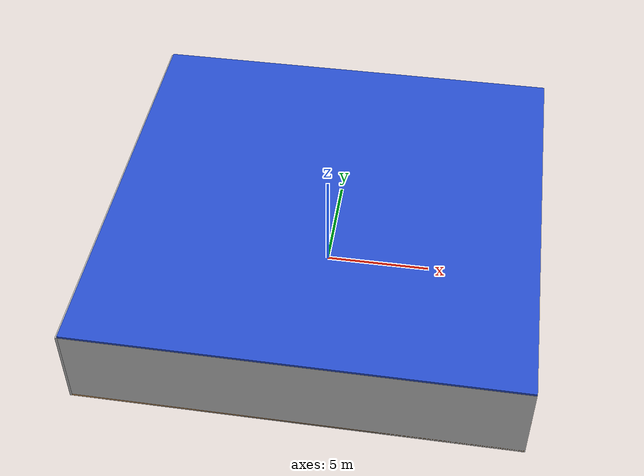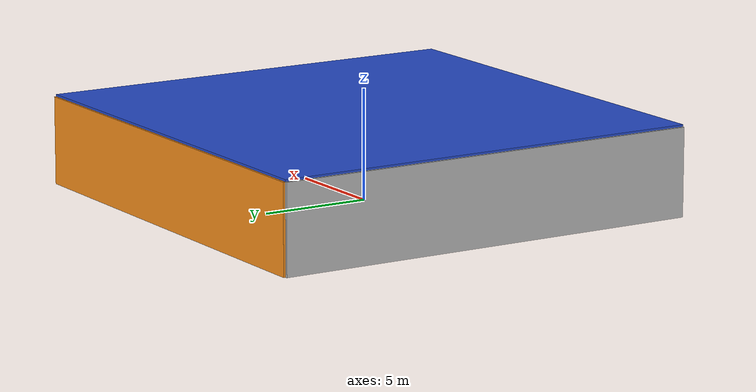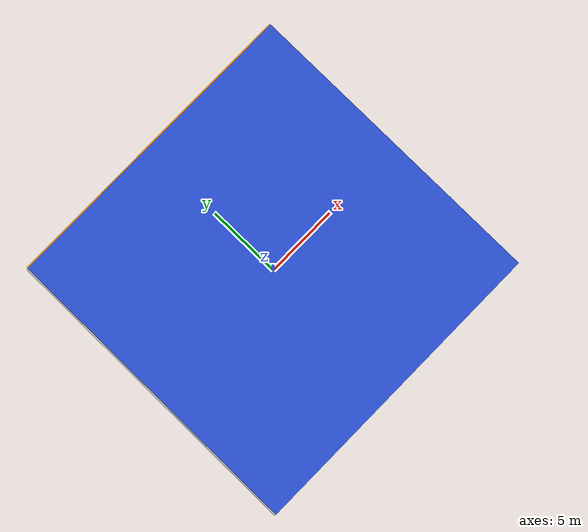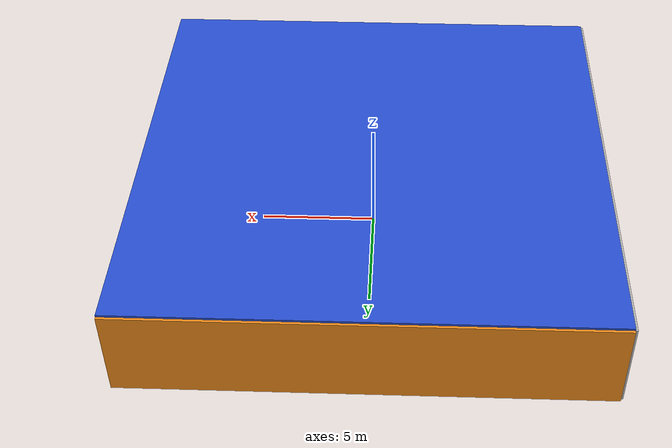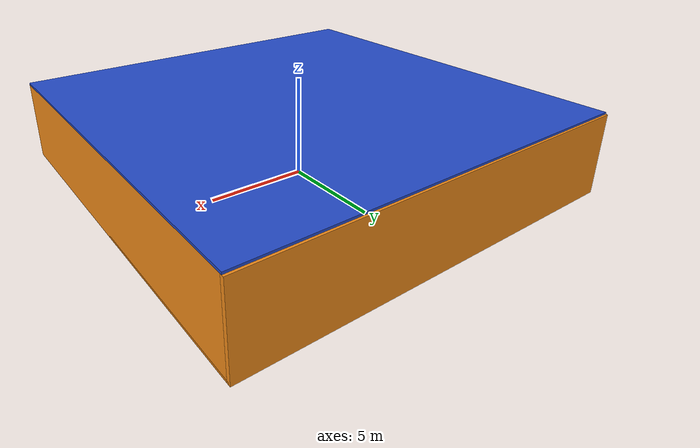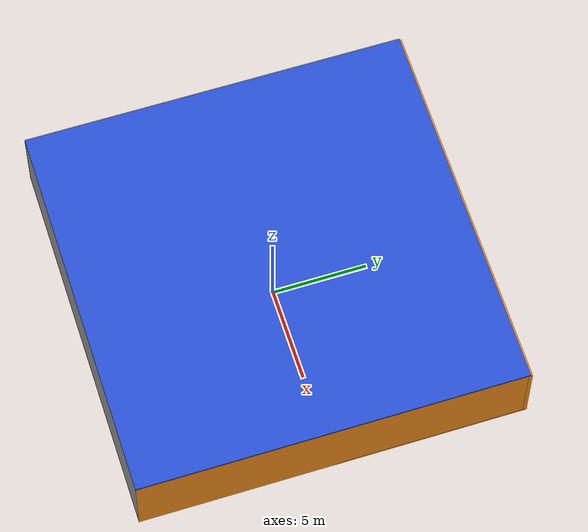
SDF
<sdf version="1.4">
 <world name="default">
  <physics type="ode">
   <max_step_size>0.001</max_step_size>
   <real_time_factor>1</real_time_factor>
   <real_time_update_rate>1000</real_time_update_rate>
   <gravity>0 0 -9.8</gravity>
  </physics>
  <scene><ambient>0.4 0.4 0.4 1</ambient><background>0.7 0.7 0.7 1</background><shadows>1</shadows></scene>
  <model name="Surrounding">
   <static>1</static>
   <link name="Ceiling">
    <collision name="Ceiling_Collision"><geometry><box><size>20 20 0.1</size></box></geometry></collision>
    <visual name="Ceiling_Visual">
     <geometry><box><size>20 20 0.1</size></box></geometry>
     <material>
      <script><uri>file://media/materials/scripts/gazebo.material</uri><name>Gazebo/BlueLaser</name></script>
     </material>
    </visual>
    <pose>0 0 4.05 0 0 0</pose>
   </link>
   <link name="Wall_South">
    <collision name="Wall_South_Collision">
     <geometry><box><size>20 0 4</size></box></geometry>
     <pose>0 0 2 0 -0 0</pose>
    </collision>
    <visual name="Wall_South_Visual">
     <pose>0 0 2 0 -0 0</pose>
     <geometry><box><size>20 0 4</size></box></geometry>
     <material>
      <script><uri>file://media/materials/scripts/gazebo.material</uri><name>Gazebo/LightOn</name></script>
     </material>
    </visual>
    <velocity_decay><linear>0</linear><angular>0</angular></velocity_decay>
    <pose>0 -10 0 0 -0 0</pose>
   </link>
   <link name="Wall_East">
    <collision name="Wall_21_Collision">
     <geometry><box><size>20 0 4</size></box></geometry>
     <pose>0 0 2 0 -0 0</pose>
    </collision>
    <visual name="Wall_21_Visual">
     <pose>0 0 2 0 -0 0</pose>
     <geometry><box><size>20 0 4</size></box></geometry>
     <material>
      <script><uri>file://media/materials/scripts/gazebo.material</uri><name>Gazebo/Orange</name></script>
     </material>
    </visual>
    <velocity_decay><linear>0</linear><angular>0</angular></velocity_decay>
    <pose>10 0 0 0 -0 1.5708</pose>
   </link>
   <link name="Wall_North">
    <collision name="Wall_22_Collision">
     <geometry><box><size>20 0.2 4</size></box></geometry>
     <pose>0 0 2 0 -0 0</pose>
    </collision>
    <visual name="Wall_22_Visual">
     <pose>0 0 2 0 -0 0</pose>
     <geometry><box><size>20 0.2 4</size></box></geometry>
     <material>
      <script><uri>file://media/materials/scripts/gazebo.material</uri><name>Gazebo/Orange</name></script>
     </material>
    </visual>
    <velocity_decay><linear>0</linear><angular>0</angular></velocity_decay>
    <pose>0 10 0 0 -0 0</pose>
   </link>
   <link name="Wall_West">
    <collision name="Wall_23_Collision">
     <geometry><box><size>20 0.2 4</size></box></geometry>
     <pose>0 0 2 0 -0 0</pose>
    </collision>
    <visual name="Wall_23_Visual">
     <pose>0 0 2 0 -0 0</pose>
     <geometry><box><size>20 0.2 4</size></box></geometry>
     <material>
      <script><uri>file://media/materials/scripts/gazebo.material</uri><name>Gazebo/PioneerBody</name></script>
     </material>
    </visual>
    <velocity_decay><linear>0</linear><angular>0</angular></velocity_decay>
    <pose>-10 0 0 0 0 -1.5708</pose>
   </link>
   <link name="Ground_link">
    <collision name="collision">
     <pose>0 0 .05 0 -0 0</pose>
     <geometry><box><size>20 20 0.1</size></box></geometry>
    </collision>
    <visual name="visual">
     <pose>0 0 .05 0 -0 0</pose>
     <geometry><box><size>20 20 0.1</size></box></geometry>
     <material>
      <script>
       <uri>file://media/materials/scripts/gazebo.material</uri>
       <name>Gazebo/OrangeTransparent</name>
      </script>
     </material>
    </visual>
   </link>
   <static>1</static>
  </model>
  <spherical_coordinates>
   <surface_model>EARTH_WGS84</surface_model>
   <latitude_deg>0</latitude_deg>
   <longitude_deg>0</longitude_deg>
   <elevation>0</elevation>
   <heading_deg>0</heading_deg>
  </spherical_coordinates>
  <light name="lightball_0" type="diffuse">
   <diffuse>0.8 0.8 0.8 1</diffuse>
   <specular>0.2 0.2 0.2 1</specular>
   <attenuation>
    <range>100</range>
    <constant>0.7</constant>
    <linear>0.01</linear>
    <quadratic>0.001</quadratic>
   </attenuation>
   <direction>-0.5 0.1 -0.9</direction>
   <pose>1.51476534947 -4.71693900185 1.92029082901 0 0 0</pose>
  </light>
  <light name="lightball_1" type="diffuse">
   <diffuse>0.8 0.8 0.8 1</diffuse>
   <specular>0.2 0.2 0.2 1</specular>
   <attenuation>
    <range>100</range>
    <constant>0.7</constant>
    <linear>0.01</linear>
    <quadratic>0.001</quadratic>
   </attenuation>
   <direction>-0.5 0.1 -0.9</direction>
   <pose>1.61325849337 -8.25745544751 3.52743823235 0 0 0</pose>
  </light>
  <light name="lightball_2" type="diffuse">
   <diffuse>0.8 0.8 0.8 1</diffuse>
   <specular>0.2 0.2 0.2 1</specular>
   <attenuation>
    <range>100</range>
    <constant>0.7</constant>
    <linear>0.01</linear>
    <quadratic>0.001</quadratic>
   </attenuation>
   <direction>-0.5 0.1 -0.9</direction>
   <pose>2.68926341738 -6.36390803155 3.53747687238 0 0 0</pose>
  </light>
  <light name="lightball_3" type="diffuse">
   <diffuse>0.8 0.8 0.8 1</diffuse>
   <specular>0.2 0.2 0.2 1</specular>
   <attenuation>
    <range>100</range>
    <constant>0.7</constant>
    <linear>0.01</linear>
    <quadratic>0.001</quadratic>
   </attenuation>
   <direction>-0.5 0.1 -0.9</direction>
   <pose>-4.38637906402 -4.09905989973 2.5692904162 0 0 0</pose>
  </light>
  <light name="lightball_4" type="diffuse">
   <diffuse>0.8 0.8 0.8 1</diffuse>
   <specular>0.2 0.2 0.2 1</specular>
   <attenuation>
    <range>100</range>
    <constant>0.7</constant>
    <linear>0.01</linear>
    <quadratic>0.001</quadratic>
   </attenuation>
   <direction>-0.5 0.1 -0.9</direction>
   <pose>3.4480293131 -4.78275318141 2.69251980188 0 0 0</pose>
  </light>
  <light name="lightball_5" type="diffuse">
   <diffuse>0.8 0.8 0.8 1</diffuse>
   <specular>0.2 0.2 0.2 1</specular>
   <attenuation>
    <range>100</range>
    <constant>0.7</constant>
    <linear>0.01</linear>
    <quadratic>0.001</quadratic>
   </attenuation>
   <direction>-0.5 0.1 -0.9</direction>
   <pose>-9.4134642956 -3.80053342393 3.4267693429 0 0 0</pose>
  </light>
  <light name="lightball_6" type="diffuse">
   <diffuse>0.8 0.8 0.8 1</diffuse>
   <specular>0.2 0.2 0.2 1</specular>
   <attenuation>
    <range>100</range>
    <constant>0.7</constant>
    <linear>0.01</linear>
    <quadratic>0.001</quadratic>
   </attenuation>
   <direction>-0.5 0.1 -0.9</direction>
   <pose>-7.65268271429 9.85868091942 1.50868916526 0 0 0</pose>
  </light>
  <light name="lightball_7" type="diffuse">
   <diffuse>0.8 0.8 0.8 1</diffuse>
   <specular>0.2 0.2 0.2 1</specular>
   <attenuation>
    <range>100</range>
    <constant>0.7</constant>
    <linear>0.01</linear>
    <quadratic>0.001</quadratic>
   </attenuation>
   <direction>-0.5 0.1 -0.9</direction>
   <pose>-8.78163325445 9.58710599191 0.694949811324 0 0 0</pose>
  </light>
  <light name="lightball_8" type="diffuse">
   <diffuse>0.8 0.8 0.8 1</diffuse>
   <specular>0.2 0.2 0.2 1</specular>
   <attenuation>
    <range>100</range>
    <constant>0.7</constant>
    <linear>0.01</linear>
    <quadratic>0.001</quadratic>
   </attenuation>
   <direction>-0.5 0.1 -0.9</direction>
   <pose>-7.306587865 9.96360164872 2.32011973331 0 0 0</pose>
  </light>
  <light name="lightball_9" type="diffuse">
   <diffuse>0.8 0.8 0.8 1</diffuse>
   <specular>0.2 0.2 0.2 1</specular>
   <attenuation>
    <range>100</range>
    <constant>0.7</constant>
    <linear>0.01</linear>
    <quadratic>0.001</quadratic>
   </attenuation>
   <direction>-0.5 0.1 -0.9</direction>
   <pose>5.41458181289 -0.261804598121 1.58357400508 0 0 0</pose>
  </light>
  <light name="lightball_10" type="diffuse">
   <diffuse>0.8 0.8 0.8 1</diffuse>
   <specular>0.2 0.2 0.2 1</specular>
   <attenuation>
    <range>100</range>
    <constant>0.7</constant>
    <linear>0.01</linear>
    <quadratic>0.001</quadratic>
   </attenuation>
   <direction>-0.5 0.1 -0.9</direction>
   <pose>2.09077186045 -2.84369855568 1.52262803887 0 0 0</pose>
  </light>
  <include>
   <uri>model://construction_cone</uri>
   <pose>-5.06037797773 2.03057421087 0 0 0 0.32836717838</pose>
  </include>
  <include>
   <uri>model://robocup_3Dsim_goal</uri>
   <pose>-0.759084584455 8.11682570784 0 0 0 1.37216567243</pose>
  </include>
  <include>
   <uri>model://textured_shapes</uri>
   <pose>1.88783234918 -1.05393437581 0 0 0 0.485459100519</pose>
  </include>
  <include><uri>model://cabinet</uri><pose>1.5335938589 1.16189864592 0 0 0 1.40121219909</pose></include>
  <include>
   <uri>model://robocup_3Dsim_goal</uri>
   <pose>6.92089190698 -7.62597056625 0 0 0 3.02254524697</pose>
  </include>
  <include>
   <uri>model://construction_cone</uri>
   <pose>7.21863101425 -0.971694587577 0 0 0 2.68372286857</pose>
  </include>
 </world>
</sdf>

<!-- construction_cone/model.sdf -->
<sdf version="1.5">
  <model name="Construction Cone">
    <link name="link">
      <collision name="collision">
        <geometry>
          <mesh>
            <scale>10 10 10</scale>
            <uri>file://isr-testbed/construction_cone/meshes/construction_cone.dae</uri>
          </mesh>
        </geometry>
      </collision>
      <visual name="visual">
        <geometry>
          <mesh>
            <scale>10 10 10</scale>
            <uri>file://isr-testbed/construction_cone/meshes/construction_cone.dae</uri>
          </mesh>
        </geometry>
      </visual>
    </link>
  </model>
</sdf>

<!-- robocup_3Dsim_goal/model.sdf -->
<sdf version="1.5">
  <model name="robocup_3d_goal">
    <static>true</static>
    <link name="left_post">
      <pose>0 1.05 0.45 0 0 0</pose>
      <collision name="collision">
        <geometry>
          <cylinder>
            <radius>0.05</radius>
            <length>0.9</length>
          </cylinder>
        </geometry>
      </collision>
      <visual name="visual">
        <geometry>
          <cylinder>
            <radius>0.05</radius>
            <length>0.9</length>
          </cylinder>
        </geometry>
        <material>
          <script>
            <uri>file://media/materials/scripts/gazebo.material</uri>
            <name>Gazebo/ZincYellow</name>
          </script>
        </material>
      </visual>
    </link>
    <link name="left_support_horiz_lower">
      <pose>0.30 1.05 0.01 0 0 0</pose>
      <collision name="collision">
        <geometry>
          <box>
            <size>0.50 0.02 0.02</size>
          </box>
        </geometry>
      </collision>
      <visual name="visual">
        <geometry>
          <box>
            <size>0.50 0.02 0.02</size>
          </box>
        </geometry>
        <material>
          <script>
            <uri>file://media/materials/scripts/gazebo.material</uri>
            <name>Gazebo/White</name>
          </script>
        </material>
      </visual>
    </link>
    <link name="left_support_horiz_upper">
      <pose>0.30 1.05 0.79 0 0 0</pose>
      <collision name="collision">
        <geometry>
          <box>
            <size>0.50 0.02 0.02</size>
          </box>
        </geometry>
      </collision>
      <visual name="visual">
        <geometry>
          <box>
            <size>0.50 0.02 0.02</size>
          </box>
        </geometry>
        <material>
          <script>
            <uri>file://media/materials/scripts/gazebo.material</uri>
            <name>Gazebo/White</name>
          </script>
        </material>
      </visual>
    </link>
    <link name="left_support_vertical">
      <pose>0.56 1.05 0.4 0 1.5708 0</pose>
      <collision name="collision">
        <geometry>
          <box>
            <size>0.80 0.02 0.02</size>
          </box>
        </geometry>
      </collision>
      <visual name="visual">
        <geometry>
          <box>
            <size>0.80 0.02 0.02</size>
          </box>
        </geometry>
        <material>
          <script>
            <uri>file://media/materials/scripts/gazebo.material</uri>
            <name>Gazebo/White</name>
          </script>
        </material>
      </visual>
    </link>
    <link name="right_support_horiz_lower">
      <pose>0.30 -1.05 0.01 0 0 0</pose>
      <collision name="collision">
        <geometry>
          <box>
            <size>0.50 0.02 0.02</size>
          </box>
        </geometry>
      </collision>
      <visual name="visual">
        <geometry>
          <box>
            <size>0.50 0.02 0.02</size>
          </box>
        </geometry>
        <material>
          <script>
            <uri>file://media/materials/scripts/gazebo.material</uri>
            <name>Gazebo/White</name>
          </script>
        </material>
      </visual>
    </link>
    <link name="right_support_horiz_upper">
      <pose>0.30 -1.05 0.79 0 0 0</pose>
      <collision name="collision">
        <geometry>
          <box>
            <size>0.50 0.02 0.02</size>
          </box>
        </geometry>
      </collision>
      <visual name="visual">
        <geometry>
          <box>
            <size>0.50 0.02 0.02</size>
          </box>
        </geometry>
        <material>
          <script>
            <uri>file://media/materials/scripts/gazebo.material</uri>
            <name>Gazebo/White</name>
          </script>
        </material>
      </visual>
    </link>
    <link name="right_support_vertical">
      <pose>0.56 -1.05 0.4 0 1.5708 0</pose>
      <collision name="collision">
        <geometry>
          <box>
            <size>0.80 0.02 0.02</size>
          </box>
        </geometry>
      </collision>
      <visual name="visual">
        <geometry>
          <box>
            <size>0.80 0.02 0.02</size>
          </box>
        </geometry>
        <material>
          <script>
            <uri>file://media/materials/scripts/gazebo.material</uri>
            <name>Gazebo/White</name>
          </script>
        </material>
      </visual>
    </link>
    <link name="center_support_horiz_lower">
      <pose>0.56 0 0.01 0 1.5708 0</pose>
      <collision name="collision">
        <geometry>
          <box>
            <size>0.02 2.08 0.02</size>
          </box>
        </geometry>
      </collision>
      <visual name="visual">
        <geometry>
          <box>
            <size>0.02 2.08 0.02</size>
          </box>
        </geometry>
        <material>
          <script>
            <uri>file://media/materials/scripts/gazebo.material</uri>
            <name>Gazebo/White</name>
          </script>
        </material>
      </visual>
    </link>
    <link name="center_support_horiz_upper">
      <pose>0.56 0 0.79 0 1.5708 0</pose>
      <collision name="collision">
        <geometry>
          <box>
            <size>0.02 2.08 0.02</size>
          </box>
        </geometry>
      </collision>
      <visual name="visual">
        <geometry>
          <box>
            <size>0.02 2.08 0.02</size>
          </box>
        </geometry>
        <material>
          <script>
            <uri>file://media/materials/scripts/gazebo.material</uri>
            <name>Gazebo/White</name>
          </script>
        </material>
      </visual>
    </link>
    <link name="right_post">
      <pose>0 -1.05 0.45 0 0 0</pose>
      <collision name="collision">
        <geometry>
          <cylinder>
            <radius>0.05</radius>
            <length>0.9</length>
          </cylinder>
        </geometry>
      </collision>
      <visual name="visual">
        <geometry>
          <cylinder>
            <radius>0.05</radius>
            <length>0.9</length>
          </cylinder>
        </geometry>
        <material>
          <script>
            <uri>file://media/materials/scripts/gazebo.material</uri>
            <name>Gazebo/ZincYellow</name>
          </script>
        </material>
      </visual>
    </link>
    <link name="crossbar">
      <pose>0 0 0.85 1.57 1.57 0</pose>
      <collision name="collision">
        <geometry>
          <cylinder>
            <radius>0.05</radius>
            <length>2.0</length>
          </cylinder>
        </geometry>
      </collision>
      <visual name="visual">
        <geometry>
          <cylinder>
            <radius>0.05</radius>
            <length>2.0</length>
          </cylinder>
        </geometry>
        <material>
          <script>
            <uri>file://media/materials/scripts/gazebo.material</uri>
            <name>Gazebo/ZincYellow</name>
          </script>
        </material>
      </visual>
    </link>
    <link name="center_net">
      <pose>0.56 0 0.40 0 0 0</pose>
      <collision name="collision">
        <geometry>
          <box>
            <size>0.01 2.1 0.80</size>
          </box>
        </geometry>
      </collision>
      <visual name="visual">
        <geometry>
          <box>
            <size>0.01 2.1 0.80</size>
          </box>
        </geometry>
        <material>
          <script>
            <uri>model://../model_source/models/robocup09_spl_field/materials/scripts/</uri>
            <uri>model://../model_source/models/robocup09_spl_field/materials/textures/</uri>
            <name>RoboCup/Net</name>
          </script>
        </material>
      </visual>
    </link>
    <link name="left_net">
      <pose>0.30 1.05 0.40 0 0 0</pose>
      <collision name="collision">
        <geometry>
          <box>
            <size>0.50 0.01 0.76</size>
          </box>
        </geometry>
      </collision>
      <visual name="visual">
        <geometry>
          <box>
            <size>0.50 0.01 0.76</size>
          </box>
        </geometry>
        <material>
          <script>
            <uri>model://../model_source/models/robocup09_spl_field/materials/scripts/</uri>
            <uri>model://../model_source/models/robocup09_spl_field/materials/textures/</uri>
            <name>RoboCup/Net</name>
          </script>
        </material>
      </visual>
    </link>
    <link name="right_net">
      <pose>0.30 -1.05 0.40 0 0 0</pose>
      <collision name="collision">
        <geometry>
          <box>
            <size>0.50 0.01 0.76</size>
          </box>
        </geometry>
      </collision>
      <visual name="visual">
        <geometry>
          <box>
            <size>0.50 0.01 0.76</size>
          </box>
        </geometry>
        <material>
          <script>
            <uri>model://../model_source/models/robocup09_spl_field/materials/scripts/</uri>
            <uri>model://../model_source/models/robocup09_spl_field/materials/textures/</uri>
            <name>RoboCup/Net</name>
          </script>
        </material>
      </visual>
    </link>
  </model>
</sdf>

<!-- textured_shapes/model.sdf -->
<sdf version="1.6">
  <model name="textured_shapes">
    <pose>0 0 0.5 0 0 0</pose>
    <link name="box">
      <pose>0 -1.5 0 0 0 0</pose>
      <collision name="collision">
        <geometry>
          <box>
            <size>1 1 1</size>
          </box>
        </geometry>
      </collision>
      <visual name="visual">
        <geometry>
          <box>
            <size>1 1 1</size>
          </box>
        </geometry>
        <material>
          <script>
            <uri>model://../model_source/models/textured_shapes/materials/scripts</uri>
            <uri>model://../model_source/models/textured_shapes/materials/textures</uri>
            <name>TexturedShape/Squares</name>
          </script>
        </material>
      </visual>
    </link>
    <link name="sphere">
      <collision name="collision">
        <geometry>
          <sphere>
            <radius>0.5</radius>
          </sphere>
        </geometry>
      </collision>
      <visual name="visual">
        <geometry>
          <sphere>
            <radius>0.5</radius>
          </sphere>
        </geometry>
        <material>
          <script>
            <uri>model://../model_source/models/textured_shapes/materials/scripts</uri>
            <uri>model://../model_source/models/textured_shapes/materials/textures</uri>
            <name>TexturedShape/Squares</name>
          </script>
        </material>
      </visual>
    </link>
    <link name="cylinder">
      <pose>0 1.5 0 0 0 0</pose>
      <collision name="collision">
        <geometry>
          <cylinder>
            <radius>0.5</radius>
            <length>1</length>
          </cylinder>
        </geometry>
      </collision>
      <visual name="visual">
        <geometry>
          <cylinder>
            <radius>0.5</radius>
            <length>1</length>
          </cylinder>
        </geometry>
        <material>
          <script>
            <uri>model://../model_source/models/textured_shapes/materials/scripts</uri>
            <uri>model://../model_source/models/textured_shapes/materials/textures</uri>
            <name>TexturedShape/Squares</name>
          </script>
        </material>
      </visual>
    </link>
  </model>
</sdf>

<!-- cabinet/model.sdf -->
<sdf version="1.5">
  <model name="cabinet">
    <static>true</static>
    <link name="cabinet_bottom_plate">
      <inertial>
        <pose>0 0 -1 0 0 0</pose>
        <inertia>
          <ixx>2.050000</ixx>
          <ixy>0</ixy>
          <ixz>0</ixz>
          <iyy>2.050000</iyy>
          <iyz>0</iyz>
          <izz>2.050000</izz>
        </inertia>
        <mass>25.000000</mass>
      </inertial>
      <collision name="cabinet_bottom_plate_geom">
        <pose>0 0 0.010000 0 0 0</pose>
        <geometry>
          <box>
            <size>0.450000 0.450000 0.020000</size>
          </box>
        </geometry>
      </collision>
      <visual name="cabinet_bottom_plate_geom_visual">
        <pose>0 0 0.010000 0 0 0</pose>
        <geometry>
          <box>
            <size>0.450000 0.450000 0.020000</size>
          </box>
        </geometry>
        <material>
          <script>
            <uri>model://media/materials/scripts/gazebo.material</uri>
            <name>Gazebo/Wood</name>
          </script>
        </material>
      </visual>
      <collision name="cabinet_bottom_plate_geom_cabinet_back_plate">
        <pose>0.235000 0 0.510000 0 0 0</pose>
        <geometry>
          <box>
            <size>0.020000 0.450000 1.020000</size>
          </box>
        </geometry>
      </collision>
      <visual name="cabinet_bottom_plate_geom_cabinet_back_plate_visual">
        <pose>0.235000 0 0.510000 0 0 0</pose>
        <geometry>
          <box>
            <size>0.020000 0.450000 1.020000</size>
          </box>
        </geometry>
        <material>
          <script>
            <uri>model://media/materials/scripts/gazebo.material</uri>
            <name>Gazebo/Wood</name>
          </script>
        </material>
      </visual>
      <collision name="cabinet_bottom_plate_geom_cabinet_left_plate">
        <pose>0 0.235000 0.510000 0 0 0</pose>
        <geometry>
          <box>
            <size>0.450000 0.020000 1.020000</size>
          </box>
        </geometry>
      </collision>
      <visual name="cabinet_bottom_plate_geom_cabinet_left_plate_visual">
        <pose>0 0.235000 0.510000 0 0 0</pose>
        <geometry>
          <box>
            <size>0.450000 0.020000 1.020000</size>
          </box>
        </geometry>
        <material>
          <script>
            <uri>model://media/materials/scripts/gazebo.material</uri>
            <name>Gazebo/Wood</name>
          </script>
        </material>
      </visual>
      <collision name="cabinet_bottom_plate_geom_cabinet_middle_plate">
        <pose>0 0 0.510000 0 0 0</pose>
        <geometry>
          <box>
            <size>0.450000 0.450000 0.020000</size>
          </box>
        </geometry>
      </collision>
      <visual name="cabinet_bottom_plate_geom_cabinet_middle_plate_visual">
        <pose>0 0 0.510000 0 0 0</pose>
        <geometry>
          <box>
            <size>0.450000 0.450000 0.020000</size>
          </box>
        </geometry>
        <material>
          <script>
            <uri>model://media/materials/scripts/gazebo.material</uri>
            <name>Gazebo/Wood</name>
          </script>
        </material>
      </visual>
      <collision name="cabinet_bottom_plate_geom_cabinet_right_plate">
        <pose>0 -0.235000 0.510000 0 0 0</pose>
        <geometry>
          <box>
            <size>0.450000 0.020000 1.020000</size>
          </box>
        </geometry>
      </collision>
      <visual name="cabinet_bottom_plate_geom_cabinet_right_plate_visual">
        <pose>0 -0.235000 0.510000 0 0 0</pose>
        <geometry>
          <box>
            <size>0.450000 0.020000 1.020000</size>
          </box>
        </geometry>
        <material>
          <script>
            <uri>model://media/materials/scripts/gazebo.material</uri>
            <name>Gazebo/Wood</name>
          </script>
        </material>
      </visual>
      <collision name="cabinet_bottom_plate_geom_cabinet_top_plate">
        <pose>0 0 1.010000 0 0 0</pose>
        <geometry>
          <box>
            <size>0.450000 0.450000 0.020000</size>
          </box>
        </geometry>
      </collision>
      <visual name="cabinet_bottom_plate_geom_cabinet_top_plate_visual">
        <pose>0 0 1.010000 0 0 0</pose>
        <geometry>
          <box>
            <size>0.450000 0.450000 0.020000</size>
          </box>
        </geometry>
        <material>
          <script>
            <uri>model://media/materials/scripts/gazebo.material</uri>
            <name>Gazebo/Wood</name>
          </script>
        </material>
      </visual>
    </link>
  </model>
</sdf>
